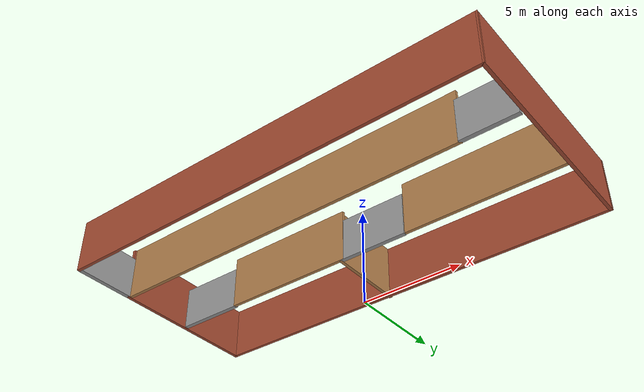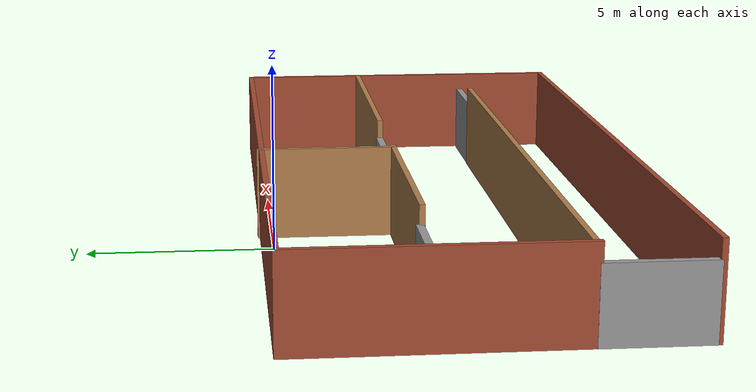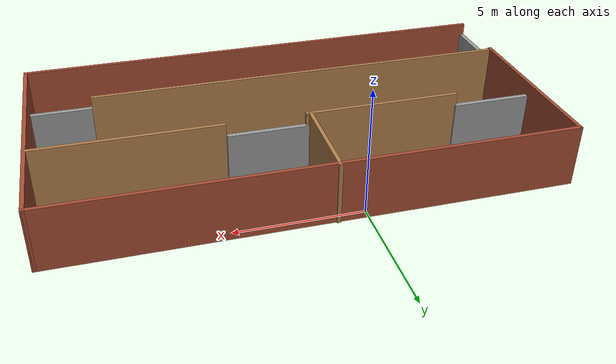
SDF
<?xml version='1.0'?>
<sdf version='1.6'>
  <model name='building2'>
    <pose frame=''>1.76356 -4.63758 0 0 -0 0</pose>
    <link name='Door_0'>
      <collision name='Door_0_Collision'>
        <geometry>
          <box>
            <size>2.75243 0.2 2</size>
          </box>
        </geometry>
        <pose frame=''>0 0 1 0 -0 0</pose>
      </collision>
      <visual name='Door_0_Visual'>
        <pose frame=''>0 0 1 0 -0 0</pose>
        <geometry>
          <box>
            <size>2.75243 0.2 2</size>
          </box>
        </geometry>
        <material>
          <script>
            <uri>file://media/materials/scripts/gazebo.material</uri>
            <name>Gazebo/Grey</name>
          </script>
        </material>
      </visual>
      <pose frame=''>-9.91507 -3.57085 0 0 0 -1.5708</pose>
    </link>
    <link name='Door_1'>
      <collision name='Door_1_Collision'>
        <geometry>
          <box>
            <size>2.4665 0.2 2</size>
          </box>
        </geometry>
        <pose frame=''>0 0 1 0 -0 0</pose>
      </collision>
      <visual name='Door_1_Visual'>
        <pose frame=''>0 0 1 0 -0 0</pose>
        <geometry>
          <box>
            <size>2.4665 0.2 2</size>
          </box>
        </geometry>
        <material>
          <script>
            <uri>file://media/materials/scripts/gazebo.material</uri>
            <name>Gazebo/Grey</name>
          </script>
        </material>
      </visual>
      <pose frame=''>8.54971 -2.14413 0 0 -0 0</pose>
    </link>
    <link name='Door_4'>
      <collision name='Door_4_Collision'>
        <geometry>
          <box>
            <size>3.22618 0.2 2</size>
          </box>
        </geometry>
        <pose frame=''>0 0 1 0 -0 0</pose>
      </collision>
      <visual name='Door_4_Visual'>
        <pose frame=''>0 0 1 0 -0 0</pose>
        <geometry>
          <box>
            <size>3.22618 0.2 2</size>
          </box>
        </geometry>
        <material>
          <script>
            <uri>file://media/materials/scripts/gazebo.material</uri>
            <name>Gazebo/Grey</name>
          </script>
        </material>
      </visual>
      <pose frame=''>1.04262 1.34073 0 0 -0 0</pose>
    </link>
    <link name='Door_5'>
      <collision name='Door_5_Collision'>
        <geometry>
          <box>
            <size>3.1912 0.2 2</size>
          </box>
        </geometry>
        <pose frame=''>0 0 1 0 -0 0</pose>
      </collision>
      <visual name='Door_5_Visual'>
        <pose frame=''>0 0 1 0 -0 0</pose>
        <geometry>
          <box>
            <size>3.1912 0.2 2</size>
          </box>
        </geometry>
        <material>
          <script>
            <uri>file://media/materials/scripts/gazebo.material</uri>
            <name>Gazebo/Grey</name>
          </script>
        </material>
      </visual>
      <pose frame=''>-8.20962 1.35822 0 0 -0 0</pose>
    </link>
    <link name='Wall_1'>
      <collision name='Wall_1_Collision'>
        <geometry>
          <box>
            <size>7.25 0.15 2.5</size>
          </box>
        </geometry>
        <pose frame=''>0 0 1.25 0 -0 0</pose>
      </collision>
      <visual name='Wall_1_Visual'>
        <pose frame=''>0 0 1.25 0 -0 0</pose>
        <geometry>
          <box>
            <size>7.25 0.15 2.5</size>
          </box>
        </geometry>
        <material>
          <script>
            <uri>file://media/materials/scripts/gazebo.material</uri>
            <name>Gazebo/Bricks</name>
          </script>
          <ambient>1 1 1 1</ambient>
        </material>
        <meta>
          <layer>0</layer>
        </meta>
      </visual>
      <pose frame=''>-9.93256 1.36658 0 0 0 -1.5708</pose>
    </link>
    <link name='Wall_14'>
      <collision name='Wall_14_Collision'>
        <geometry>
          <box>
            <size>3.75 0.15 2.5</size>
          </box>
        </geometry>
        <pose frame=''>0 0 1.25 0 -0 0</pose>
      </collision>
      <visual name='Wall_14_Visual'>
        <pose frame=''>0 0 1.25 0 -0 0</pose>
        <geometry>
          <box>
            <size>3.75 0.15 2.5</size>
          </box>
        </geometry>
        <material>
          <script>
            <uri>file://media/materials/scripts/gazebo.material</uri>
            <name>Gazebo/Wood</name>
          </script>
          <ambient>1 0.764706 0.305882 1</ambient>
        </material>
        <meta>
          <layer>0</layer>
        </meta>
      </visual>
      <pose frame=''>-0.613557 3.17358 0 0 0 -1.5708</pose>
    </link>
    <link name='Wall_16'>
      <collision name='Wall_16_Collision'>
        <geometry>
          <box>
            <size>19.9911 0.15 2.5</size>
          </box>
        </geometry>
        <pose frame=''>0 0 1.25 0 -0 0</pose>
      </collision>
      <visual name='Wall_16_Visual'>
        <pose frame=''>0 0 1.25 0 -0 0</pose>
        <geometry>
          <box>
            <size>19.9911 0.15 2.5</size>
          </box>
        </geometry>
        <material>
          <script>
            <uri>file://media/materials/scripts/gazebo.material</uri>
            <name>Gazebo/Bricks</name>
          </script>
          <ambient>1 1 1 1</ambient>
        </material>
        <meta>
          <layer>0</layer>
        </meta>
      </visual>
      <pose frame=''>-0.003057 -4.95342 0 0 -0 0.002016</pose>
    </link>
    <link name='Wall_20'>
      <collision name='Wall_20_Collision'>
        <geometry>
          <box>
            <size>17.25 0.15 2.5</size>
          </box>
        </geometry>
        <pose frame=''>0 0 1.25 0 -0 0</pose>
      </collision>
      <visual name='Wall_20_Visual'>
        <pose frame=''>0 0 1.25 0 -0 0</pose>
        <geometry>
          <box>
            <size>17.25 0.15 2.5</size>
          </box>
        </geometry>
        <material>
          <script>
            <uri>file://media/materials/scripts/gazebo.material</uri>
            <name>Gazebo/Wood</name>
          </script>
          <ambient>0.996078 0.47451 0.0196078 1</ambient>
        </material>
        <meta>
          <layer>0</layer>
        </meta>
      </visual>
      <pose frame=''>-1.21056 -2.10442 0 0 -0 3.14159</pose>
    </link>
    <link name='Wall_22'>
      <collision name='Wall_22_Collision'>
        <geometry>
          <box>
            <size>6.25 0.15 2.5</size>
          </box>
        </geometry>
        <pose frame=''>0 0 1.25 0 -0 0</pose>
      </collision>
      <visual name='Wall_22_Visual'>
        <pose frame=''>0 0 1.25 0 -0 0</pose>
        <geometry>
          <box>
            <size>6.25 0.15 2.5</size>
          </box>
        </geometry>
        <material>
          <script>
            <uri>file://media/materials/scripts/gazebo.material</uri>
            <name>Gazebo/Wood</name>
          </script>
          <ambient>1 0.764706 0.305882 1</ambient>
        </material>
        <meta>
          <layer>0</layer>
        </meta>
      </visual>
      <pose frame=''>-3.55056 1.30557 0 0 -0 0</pose>
    </link>
    <link name='Wall_24'>
      <collision name='Wall_24_Collision'>
        <geometry>
          <box>
            <size>7.25 0.15 2.5</size>
          </box>
        </geometry>
        <pose frame=''>0 0 1.25 0 -0 0</pose>
      </collision>
      <visual name='Wall_24_Visual'>
        <pose frame=''>0 0 1.25 0 -0 0</pose>
        <geometry>
          <box>
            <size>7.25 0.15 2.5</size>
          </box>
        </geometry>
        <material>
          <script>
            <uri>file://media/materials/scripts/gazebo.material</uri>
            <name>Gazebo/Wood</name>
          </script>
          <ambient>1 0.764706 0.305882 1</ambient>
        </material>
        <meta>
          <layer>0</layer>
        </meta>
      </visual>
      <pose frame=''>6.30644 1.32357 0 0 -0 0</pose>
    </link>
    <link name='Wall_5'>
      <collision name='Wall_5_Collision'>
        <geometry>
          <box>
            <size>10 0.15 2.5</size>
          </box>
        </geometry>
        <pose frame=''>0 0 1.25 0 -0 0</pose>
      </collision>
      <visual name='Wall_5_Visual'>
        <pose frame=''>0 0 1.25 0 -0 0</pose>
        <geometry>
          <box>
            <size>10 0.15 2.5</size>
          </box>
        </geometry>
        <material>
          <script>
            <uri>file://media/materials/scripts/gazebo.material</uri>
            <name>Gazebo/Bricks</name>
          </script>
          <ambient>1 1 1 1</ambient>
        </material>
        <meta>
          <layer>0</layer>
        </meta>
      </visual>
      <pose frame=''>9.92494 -0.008425 0 0 -0 1.56927</pose>
    </link>
    <link name='Wall_6'>
      <collision name='Wall_6_Collision'>
        <geometry>
          <box>
            <size>20 0.15 2.5</size>
          </box>
        </geometry>
        <pose frame=''>0 0 1.25 0 -0 0</pose>
      </collision>
      <visual name='Wall_6_Visual'>
        <pose frame=''>0 0 1.25 0 -0 0</pose>
        <geometry>
          <box>
            <size>20 0.15 2.5</size>
          </box>
        </geometry>
        <material>
          <script>
            <uri>file://media/materials/scripts/gazebo.material</uri>
            <name>Gazebo/Bricks</name>
          </script>
          <ambient>1 1 1 1</ambient>
        </material>
        <meta>
          <layer>0</layer>
        </meta>
      </visual>
      <pose frame=''>0.007443 4.91657 0 0 -0 3.14159</pose>
    </link>
    <static>1</static>
  </model>
</sdf>
